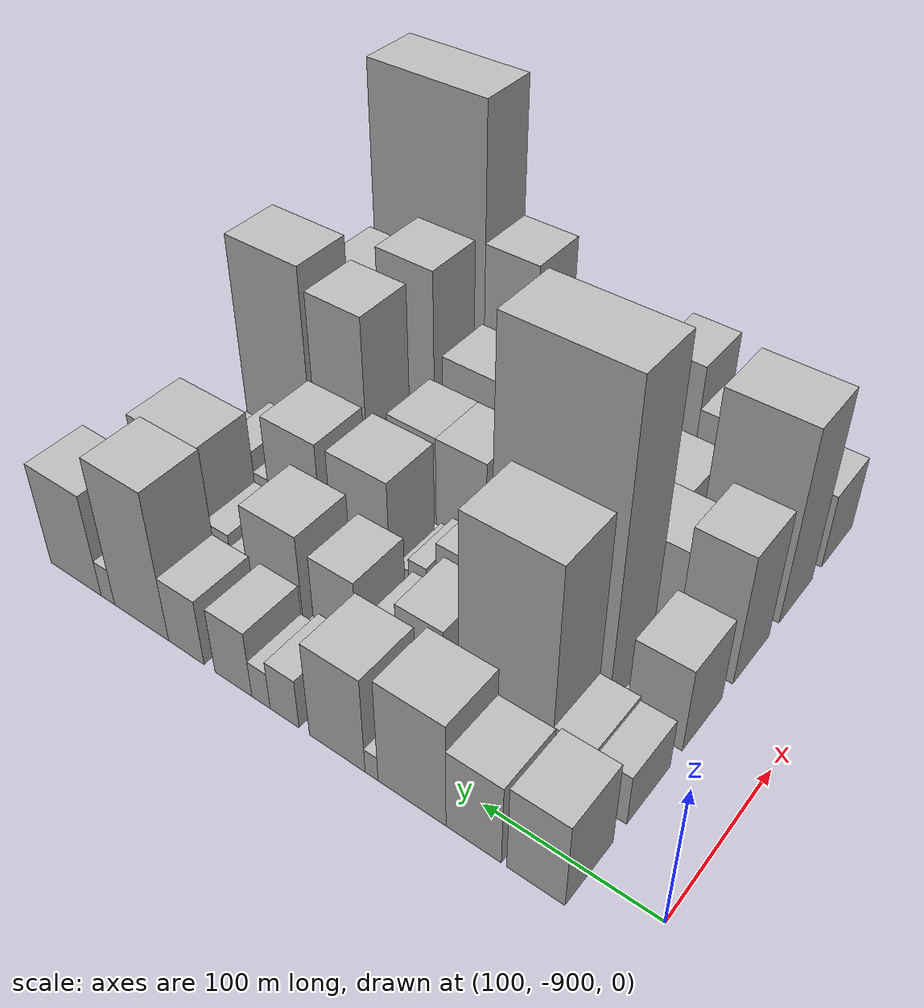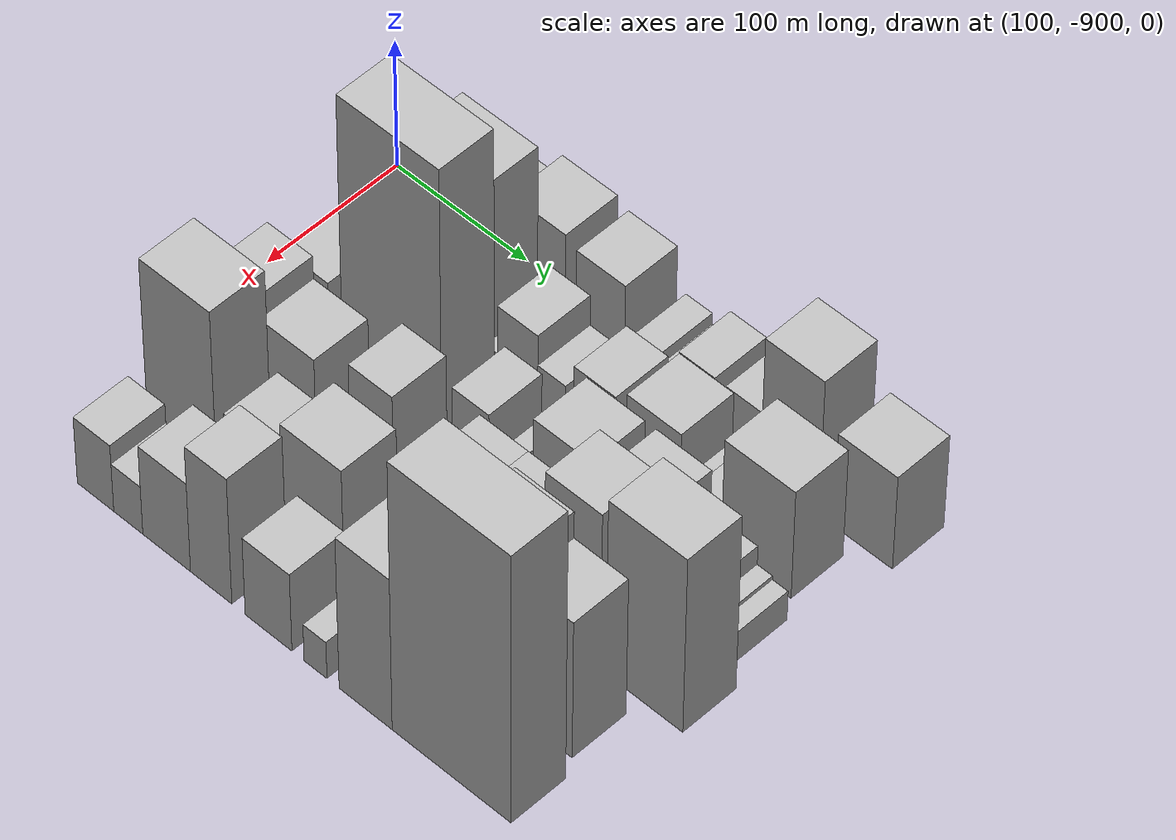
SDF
<sdf version="1.6">
 <world name="default">
  <model name="building_1">
   <static>1</static>
   <pose>100.0000 -843.9824 0 0.000000 0.000000 0.000000</pose>
   <link name="link">
    <pose>0 0 30.00 0 0 0</pose>
    <collision name="collision"><geometry><box><size>40.0000 32.0353 60.0000</size></box></geometry></collision>
    <visual name="visual">
     <cast_shadows>0</cast_shadows>
     <geometry><box><size>40.0000 32.0353 60.0000</size></box></geometry>
     <material>
      <script>
       <uri>model://HANNAS_wall/materials/scripts</uri>
       <uri>model://HANNAS_wall/materials/textures</uri>
       <name>vrc/HANNAS_wall</name>
      </script>
     </material>
    </visual>
   </link>
  </model>
  <model name="building_2">
   <static>1</static>
   <pose>100.0000 -808.9889 0 0.000000 0.000000 0.000000</pose>
   <link name="link">
    <pose>0 0 28.50 0 0 0</pose>
    <collision name="collision"><geometry><box><size>40.0000 31.9517 57.0000</size></box></geometry></collision>
    <visual name="visual">
     <cast_shadows>0</cast_shadows>
     <geometry><box><size>40.0000 31.9517 57.0000</size></box></geometry>
     <material>
      <script>
       <uri>model://HANNAS_wall/materials/scripts</uri>
       <uri>model://HANNAS_wall/materials/textures</uri>
       <name>vrc/HANNAS_wall</name>
      </script>
     </material>
    </visual>
   </link>
  </model>
  <model name="building_3">
   <static>1</static>
   <pose>100.0000 -772.3202 0 0.000000 0.000000 0.000000</pose>
   <link name="link">
    <pose>0 0 37.50 0 0 0</pose>
    <collision name="collision"><geometry><box><size>40.0000 41.3855 75.0000</size></box></geometry></collision>
    <visual name="visual">
     <cast_shadows>0</cast_shadows>
     <geometry><box><size>40.0000 41.3855 75.0000</size></box></geometry>
     <material>
      <script>
       <uri>model://HANNAS_wall/materials/scripts</uri>
       <uri>model://HANNAS_wall/materials/textures</uri>
       <name>vrc/HANNAS_wall</name>
      </script>
     </material>
    </visual>
   </link>
  </model>
  <model name="building_4">
   <static>1</static>
   <pose>100.0000 -747.5614 0 0.000000 0.000000 0.000000</pose>
   <link name="link">
    <pose>0 0 9.00 0 0 0</pose>
    <collision name="collision"><geometry><box><size>40.0000 8.1321 18.0000</size></box></geometry></collision>
    <visual name="visual">
     <cast_shadows>0</cast_shadows>
     <geometry><box><size>40.0000 8.1321 18.0000</size></box></geometry>
     <material>
      <script>
       <uri>model://HANNAS_wall/materials/scripts</uri>
       <uri>model://HANNAS_wall/materials/textures</uri>
       <name>vrc/HANNAS_wall</name>
      </script>
     </material>
    </visual>
   </link>
  </model>
  <model name="building_5">
   <static>1</static>
   <pose>100.0000 -725.3649 0 0.000000 0.000000 0.000000</pose>
   <link name="link">
    <pose>0 0 34.50 0 0 0</pose>
    <collision name="collision"><geometry><box><size>40.0000 36.2610 69.0000</size></box></geometry></collision>
    <visual name="visual">
     <cast_shadows>0</cast_shadows>
     <geometry><box><size>40.0000 36.2610 69.0000</size></box></geometry>
     <material>
      <script>
       <uri>model://HANNAS_wall/materials/scripts</uri>
       <uri>model://HANNAS_wall/materials/textures</uri>
       <name>vrc/HANNAS_wall</name>
      </script>
     </material>
    </visual>
   </link>
  </model>
  <model name="building_6">
   <static>1</static>
   <pose>100.0000 -690.3947 0 0.000000 0.000000 0.000000</pose>
   <link name="link">
    <pose>0 0 18.00 0 0 0</pose>
    <collision name="collision"><geometry><box><size>40.0000 19.6794 36.0000</size></box></geometry></collision>
    <visual name="visual">
     <cast_shadows>0</cast_shadows>
     <geometry><box><size>40.0000 19.6794 36.0000</size></box></geometry>
     <material>
      <script>
       <uri>model://HANNAS_wall/materials/scripts</uri>
       <uri>model://HANNAS_wall/materials/textures</uri>
       <name>vrc/HANNAS_wall</name>
      </script>
     </material>
    </visual>
   </link>
  </model>
  <model name="building_7">
   <static>1</static>
   <pose>100.0000 -674.1276 0 0.000000 0.000000 0.000000</pose>
   <link name="link">
    <pose>0 0 13.50 0 0 0</pose>
    <collision name="collision"><geometry><box><size>40.0000 12.8548 27.0000</size></box></geometry></collision>
    <visual name="visual">
     <cast_shadows>0</cast_shadows>
     <geometry><box><size>40.0000 12.8548 27.0000</size></box></geometry>
     <material>
      <script>
       <uri>model://HANNAS_wall/materials/scripts</uri>
       <uri>model://HANNAS_wall/materials/textures</uri>
       <name>vrc/HANNAS_wall</name>
      </script>
     </material>
    </visual>
   </link>
  </model>
  <model name="building_8">
   <static>1</static>
   <pose>100.0000 -654.4805 0 0.000000 0.000000 0.000000</pose>
   <link name="link">
    <pose>0 0 24.00 0 0 0</pose>
    <collision name="collision"><geometry><box><size>40.0000 26.4393 48.0000</size></box></geometry></collision>
    <visual name="visual">
     <cast_shadows>0</cast_shadows>
     <geometry><box><size>40.0000 26.4393 48.0000</size></box></geometry>
     <material>
      <script>
       <uri>model://HANNAS_wall/materials/scripts</uri>
       <uri>model://HANNAS_wall/materials/textures</uri>
       <name>vrc/HANNAS_wall</name>
      </script>
     </material>
    </visual>
   </link>
  </model>
  <model name="building_9">
   <static>1</static>
   <pose>100.0000 -619.9598 0 0.000000 0.000000 0.000000</pose>
   <link name="link">
    <pose>0 0 24.00 0 0 0</pose>
    <collision name="collision"><geometry><box><size>40.0000 26.6021 48.0000</size></box></geometry></collision>
    <visual name="visual">
     <cast_shadows>0</cast_shadows>
     <geometry><box><size>40.0000 26.6021 48.0000</size></box></geometry>
     <material>
      <script>
       <uri>model://HANNAS_wall/materials/scripts</uri>
       <uri>model://HANNAS_wall/materials/textures</uri>
       <name>vrc/HANNAS_wall</name>
      </script>
     </material>
    </visual>
   </link>
  </model>
  <model name="building_10">
   <static>1</static>
   <pose>100.0000 -585.4479 0 0.000000 0.000000 0.000000</pose>
   <link name="link">
    <pose>0 0 54.00 0 0 0</pose>
    <collision name="collision"><geometry><box><size>40.0000 42.4217 108.0000</size></box></geometry></collision>
    <visual name="visual">
     <cast_shadows>0</cast_shadows>
     <geometry><box><size>40.0000 42.4217 108.0000</size></box></geometry>
     <material>
      <script>
       <uri>model://HANNAS_wall/materials/scripts</uri>
       <uri>model://HANNAS_wall/materials/textures</uri>
       <name>vrc/HANNAS_wall</name>
      </script>
     </material>
    </visual>
   </link>
  </model>
  <model name="building_11">
   <static>1</static>
   <pose>100.0000 -558.7924 0 0.000000 0.000000 0.000000</pose>
   <link name="link">
    <pose>0 0 13.50 0 0 0</pose>
    <collision name="collision"><geometry><box><size>40.0000 10.8893 27.0000</size></box></geometry></collision>
    <visual name="visual">
     <cast_shadows>0</cast_shadows>
     <geometry><box><size>40.0000 10.8893 27.0000</size></box></geometry>
     <material>
      <script>
       <uri>model://HANNAS_wall/materials/scripts</uri>
       <uri>model://HANNAS_wall/materials/textures</uri>
       <name>vrc/HANNAS_wall</name>
      </script>
     </material>
    </visual>
   </link>
  </model>
  <model name="building_12">
   <static>1</static>
   <pose>100.0000 -532.3244 0 0.000000 0.000000 0.000000</pose>
   <link name="link">
    <pose>0 0 37.50 0 0 0</pose>
    <collision name="collision"><geometry><box><size>40.0000 42.0468 75.0000</size></box></geometry></collision>
    <visual name="visual">
     <cast_shadows>0</cast_shadows>
     <geometry><box><size>40.0000 42.0468 75.0000</size></box></geometry>
     <material>
      <script>
       <uri>model://HANNAS_wall/materials/scripts</uri>
       <uri>model://HANNAS_wall/materials/textures</uri>
       <name>vrc/HANNAS_wall</name>
      </script>
     </material>
    </visual>
   </link>
  </model>
  <model name="building_54">
   <static>1</static>
   <pose>152.0000 -849.9391 0 0.000000 0.000000 0.000000</pose>
   <link name="link">
    <pose>0 0 18.00 0 0 0</pose>
    <collision name="collision"><geometry><box><size>40.0000 20.1219 36.0000</size></box></geometry></collision>
    <visual name="visual">
     <cast_shadows>0</cast_shadows>
     <geometry><box><size>40.0000 20.1219 36.0000</size></box></geometry>
     <material>
      <script>
       <uri>model://HANNAS_wall/materials/scripts</uri>
       <uri>model://HANNAS_wall/materials/textures</uri>
       <name>vrc/HANNAS_wall</name>
      </script>
     </material>
    </visual>
   </link>
  </model>
  <model name="building_55">
   <static>1</static>
   <pose>152.0000 -828.3046 0 0.000000 0.000000 0.000000</pose>
   <link name="link">
    <pose>0 0 19.50 0 0 0</pose>
    <collision name="collision"><geometry><box><size>40.0000 23.1471 39.0000</size></box></geometry></collision>
    <visual name="visual">
     <cast_shadows>0</cast_shadows>
     <geometry><box><size>40.0000 23.1471 39.0000</size></box></geometry>
     <material>
      <script>
       <uri>model://HANNAS_wall/materials/scripts</uri>
       <uri>model://HANNAS_wall/materials/textures</uri>
       <name>vrc/HANNAS_wall</name>
      </script>
     </material>
    </visual>
   </link>
  </model>
  <model name="building_56">
   <static>1</static>
   <pose>152.0000 -788.7772 0 0.000000 0.000000 0.000000</pose>
   <link name="link">
    <pose>0 0 73.50 0 0 0</pose>
    <collision name="collision"><geometry><box><size>40.0000 55.9077 147.0000</size></box></geometry></collision>
    <visual name="visual">
     <cast_shadows>0</cast_shadows>
     <geometry><box><size>40.0000 55.9077 147.0000</size></box></geometry>
     <material>
      <script>
       <uri>model://HANNAS_wall/materials/scripts</uri>
       <uri>model://HANNAS_wall/materials/textures</uri>
       <name>vrc/HANNAS_wall</name>
      </script>
     </material>
    </visual>
   </link>
  </model>
  <model name="building_57">
   <static>1</static>
   <pose>152.0000 -756.2359 0 0.000000 0.000000 0.000000</pose>
   <link name="link">
    <pose>0 0 10.50 0 0 0</pose>
    <collision name="collision"><geometry><box><size>40.0000 9.1748 21.0000</size></box></geometry></collision>
    <visual name="visual">
     <cast_shadows>0</cast_shadows>
     <geometry><box><size>40.0000 9.1748 21.0000</size></box></geometry>
     <material>
      <script>
       <uri>model://HANNAS_wall/materials/scripts</uri>
       <uri>model://HANNAS_wall/materials/textures</uri>
       <name>vrc/HANNAS_wall</name>
      </script>
     </material>
    </visual>
   </link>
  </model>
  <model name="building_58">
   <static>1</static>
   <pose>152.0000 -736.5717 0 0.000000 0.000000 0.000000</pose>
   <link name="link">
    <pose>0 0 30.00 0 0 0</pose>
    <collision name="collision"><geometry><box><size>40.0000 30.1537 60.0000</size></box></geometry></collision>
    <visual name="visual">
     <cast_shadows>0</cast_shadows>
     <geometry><box><size>40.0000 30.1537 60.0000</size></box></geometry>
     <material>
      <script>
       <uri>model://HANNAS_wall/materials/scripts</uri>
       <uri>model://HANNAS_wall/materials/textures</uri>
       <name>vrc/HANNAS_wall</name>
      </script>
     </material>
    </visual>
   </link>
  </model>
  <model name="building_59">
   <static>1</static>
   <pose>152.0000 -711.0930 0 0.000000 0.000000 0.000000</pose>
   <link name="link">
    <pose>0 0 18.00 0 0 0</pose>
    <collision name="collision"><geometry><box><size>40.0000 20.8037 36.0000</size></box></geometry></collision>
    <visual name="visual">
     <cast_shadows>0</cast_shadows>
     <geometry><box><size>40.0000 20.8037 36.0000</size></box></geometry>
     <material>
      <script>
       <uri>model://HANNAS_wall/materials/scripts</uri>
       <uri>model://HANNAS_wall/materials/textures</uri>
       <name>vrc/HANNAS_wall</name>
      </script>
     </material>
    </visual>
   </link>
  </model>
  <model name="building_60">
   <static>1</static>
   <pose>152.0000 -679.4132 0 0.000000 0.000000 0.000000</pose>
   <link name="link">
    <pose>0 0 28.50 0 0 0</pose>
    <collision name="collision"><geometry><box><size>40.0000 30.5560 57.0000</size></box></geometry></collision>
    <visual name="visual">
     <cast_shadows>0</cast_shadows>
     <geometry><box><size>40.0000 30.5560 57.0000</size></box></geometry>
     <material>
      <script>
       <uri>model://HANNAS_wall/materials/scripts</uri>
       <uri>model://HANNAS_wall/materials/textures</uri>
       <name>vrc/HANNAS_wall</name>
      </script>
     </material>
    </visual>
   </link>
  </model>
  <model name="building_61">
   <static>1</static>
   <pose>152.0000 -636.3785 0 0.000000 0.000000 0.000000</pose>
   <link name="link">
    <pose>0 0 33.00 0 0 0</pose>
    <collision name="collision"><geometry><box><size>40.0000 39.5135 66.0000</size></box></geometry></collision>
    <visual name="visual">
     <cast_shadows>0</cast_shadows>
     <geometry><box><size>40.0000 39.5135 66.0000</size></box></geometry>
     <material>
      <script>
       <uri>model://HANNAS_wall/materials/scripts</uri>
       <uri>model://HANNAS_wall/materials/textures</uri>
       <name>vrc/HANNAS_wall</name>
      </script>
     </material>
    </visual>
   </link>
  </model>
  <model name="building_62">
   <static>1</static>
   <pose>152.0000 -610.4606 0 0.000000 0.000000 0.000000</pose>
   <link name="link">
    <pose>0 0 13.50 0 0 0</pose>
    <collision name="collision"><geometry><box><size>40.0000 12.3221 27.0000</size></box></geometry></collision>
    <visual name="visual">
     <cast_shadows>0</cast_shadows>
     <geometry><box><size>40.0000 12.3221 27.0000</size></box></geometry>
     <material>
      <script>
       <uri>model://HANNAS_wall/materials/scripts</uri>
       <uri>model://HANNAS_wall/materials/textures</uri>
       <name>vrc/HANNAS_wall</name>
      </script>
     </material>
    </visual>
   </link>
  </model>
  <model name="building_63">
   <static>1</static>
   <pose>152.0000 -595.1920 0 0.000000 0.000000 0.000000</pose>
   <link name="link">
    <pose>0 0 18.00 0 0 0</pose>
    <collision name="collision"><geometry><box><size>40.0000 18.2151 36.0000</size></box></geometry></collision>
    <visual name="visual">
     <cast_shadows>0</cast_shadows>
     <geometry><box><size>40.0000 18.2151 36.0000</size></box></geometry>
     <material>
      <script>
       <uri>model://HANNAS_wall/materials/scripts</uri>
       <uri>model://HANNAS_wall/materials/textures</uri>
       <name>vrc/HANNAS_wall</name>
      </script>
     </material>
    </visual>
   </link>
  </model>
  <model name="building_64">
   <static>1</static>
   <pose>152.0000 -560.8856 0 0.000000 0.000000 0.000000</pose>
   <link name="link">
    <pose>0 0 43.50 0 0 0</pose>
    <collision name="collision"><geometry><box><size>40.0000 50.3978 87.0000</size></box></geometry></collision>
    <visual name="visual">
     <cast_shadows>0</cast_shadows>
     <geometry><box><size>40.0000 50.3978 87.0000</size></box></geometry>
     <material>
      <script>
       <uri>model://HANNAS_wall/materials/scripts</uri>
       <uri>model://HANNAS_wall/materials/textures</uri>
       <name>vrc/HANNAS_wall</name>
      </script>
     </material>
    </visual>
   </link>
  </model>
  <model name="building_103">
   <static>1</static>
   <pose>204.0000 -843.6166 0 0.000000 0.000000 0.000000</pose>
   <link name="link">
    <pose>0 0 30.00 0 0 0</pose>
    <collision name="collision"><geometry><box><size>40.0000 32.7667 60.0000</size></box></geometry></collision>
    <visual name="visual">
     <cast_shadows>0</cast_shadows>
     <geometry><box><size>40.0000 32.7667 60.0000</size></box></geometry>
     <material>
      <script>
       <uri>model://HANNAS_wall/materials/scripts</uri>
       <uri>model://HANNAS_wall/materials/textures</uri>
       <name>vrc/HANNAS_wall</name>
      </script>
     </material>
    </visual>
   </link>
  </model>
  <model name="building_104">
   <static>1</static>
   <pose>204.0000 -779.7039 0 0.000000 0.000000 0.000000</pose>
   <link name="link">
    <pose>0 0 108.00 0 0 0</pose>
    <collision name="collision"><geometry><box><size>40.0000 75.0588 216.0000</size></box></geometry></collision>
    <visual name="visual">
     <cast_shadows>0</cast_shadows>
     <geometry><box><size>40.0000 75.0588 216.0000</size></box></geometry>
     <material>
      <script>
       <uri>model://HANNAS_wall/materials/scripts</uri>
       <uri>model://HANNAS_wall/materials/textures</uri>
       <name>vrc/HANNAS_wall</name>
      </script>
     </material>
    </visual>
   </link>
  </model>
  <model name="building_105">
   <static>1</static>
   <pose>204.0000 -720.4443 0 0.000000 0.000000 0.000000</pose>
   <link name="link">
    <pose>0 0 25.50 0 0 0</pose>
    <collision name="collision"><geometry><box><size>40.0000 27.4602 51.0000</size></box></geometry></collision>
    <visual name="visual">
     <cast_shadows>0</cast_shadows>
     <geometry><box><size>40.0000 27.4602 51.0000</size></box></geometry>
     <material>
      <script>
       <uri>model://HANNAS_wall/materials/scripts</uri>
       <uri>model://HANNAS_wall/materials/textures</uri>
       <name>vrc/HANNAS_wall</name>
      </script>
     </material>
    </visual>
   </link>
  </model>
  <model name="building_106">
   <static>1</static>
   <pose>204.0000 -693.5294 0 0.000000 0.000000 0.000000</pose>
   <link name="link">
    <pose>0 0 13.50 0 0 0</pose>
    <collision name="collision"><geometry><box><size>40.0000 12.3696 27.0000</size></box></geometry></collision>
    <visual name="visual">
     <cast_shadows>0</cast_shadows>
     <geometry><box><size>40.0000 12.3696 27.0000</size></box></geometry>
     <material>
      <script>
       <uri>model://HANNAS_wall/materials/scripts</uri>
       <uri>model://HANNAS_wall/materials/textures</uri>
       <name>vrc/HANNAS_wall</name>
      </script>
     </material>
    </visual>
   </link>
  </model>
  <model name="building_107">
   <static>1</static>
   <pose>204.0000 -683.2090 0 0.000000 0.000000 0.000000</pose>
   <link name="link">
    <pose>0 0 9.00 0 0 0</pose>
    <collision name="collision"><geometry><box><size>40.0000 8.2712 18.0000</size></box></geometry></collision>
    <visual name="visual">
     <cast_shadows>0</cast_shadows>
     <geometry><box><size>40.0000 8.2712 18.0000</size></box></geometry>
     <material>
      <script>
       <uri>model://HANNAS_wall/materials/scripts</uri>
       <uri>model://HANNAS_wall/materials/textures</uri>
       <name>vrc/HANNAS_wall</name>
      </script>
     </material>
    </visual>
   </link>
  </model>
  <model name="building_108">
   <static>1</static>
   <pose>204.0000 -652.8437 0 0.000000 0.000000 0.000000</pose>
   <link name="link">
    <pose>0 0 37.50 0 0 0</pose>
    <collision name="collision"><geometry><box><size>40.0000 42.4595 75.0000</size></box></geometry></collision>
    <visual name="visual">
     <cast_shadows>0</cast_shadows>
     <geometry><box><size>40.0000 42.4595 75.0000</size></box></geometry>
     <material>
      <script>
       <uri>model://HANNAS_wall/materials/scripts</uri>
       <uri>model://HANNAS_wall/materials/textures</uri>
       <name>vrc/HANNAS_wall</name>
      </script>
     </material>
    </visual>
   </link>
  </model>
  <model name="building_109">
   <static>1</static>
   <pose>204.0000 -603.5670 0 0.000000 0.000000 0.000000</pose>
   <link name="link">
    <pose>0 0 37.50 0 0 0</pose>
    <collision name="collision"><geometry><box><size>40.0000 40.0938 75.0000</size></box></geometry></collision>
    <visual name="visual">
     <cast_shadows>0</cast_shadows>
     <geometry><box><size>40.0000 40.0938 75.0000</size></box></geometry>
     <material>
      <script>
       <uri>model://HANNAS_wall/materials/scripts</uri>
       <uri>model://HANNAS_wall/materials/textures</uri>
       <name>vrc/HANNAS_wall</name>
      </script>
     </material>
    </visual>
   </link>
  </model>
  <model name="building_110">
   <static>1</static>
   <pose>204.0000 -577.8562 0 0.000000 0.000000 0.000000</pose>
   <link name="link">
    <pose>0 0 13.50 0 0 0</pose>
    <collision name="collision"><geometry><box><size>40.0000 11.3280 27.0000</size></box></geometry></collision>
    <visual name="visual">
     <cast_shadows>0</cast_shadows>
     <geometry><box><size>40.0000 11.3280 27.0000</size></box></geometry>
     <material>
      <script>
       <uri>model://HANNAS_wall/materials/scripts</uri>
       <uri>model://HANNAS_wall/materials/textures</uri>
       <name>vrc/HANNAS_wall</name>
      </script>
     </material>
    </visual>
   </link>
  </model>
  <model name="building_111">
   <static>1</static>
   <pose>204.0000 -560.8954 0 0.000000 0.000000 0.000000</pose>
   <link name="link">
    <pose>0 0 21.00 0 0 0</pose>
    <collision name="collision"><geometry><box><size>40.0000 22.5935 42.0000</size></box></geometry></collision>
    <visual name="visual">
     <cast_shadows>0</cast_shadows>
     <geometry><box><size>40.0000 22.5935 42.0000</size></box></geometry>
     <material>
      <script>
       <uri>model://HANNAS_wall/materials/scripts</uri>
       <uri>model://HANNAS_wall/materials/textures</uri>
       <name>vrc/HANNAS_wall</name>
      </script>
     </material>
    </visual>
   </link>
  </model>
  <model name="building_112">
   <static>1</static>
   <pose>204.0000 -544.0743 0 0.000000 0.000000 0.000000</pose>
   <link name="link">
    <pose>0 0 13.50 0 0 0</pose>
    <collision name="collision"><geometry><box><size>40.0000 11.0487 27.0000</size></box></geometry></collision>
    <visual name="visual">
     <cast_shadows>0</cast_shadows>
     <geometry><box><size>40.0000 11.0487 27.0000</size></box></geometry>
     <material>
      <script>
       <uri>model://HANNAS_wall/materials/scripts</uri>
       <uri>model://HANNAS_wall/materials/textures</uri>
       <name>vrc/HANNAS_wall</name>
      </script>
     </material>
    </visual>
   </link>
  </model>
  <model name="building_113">
   <static>1</static>
   <pose>204.0000 -532.9611 0 0.000000 0.000000 0.000000</pose>
   <link name="link">
    <pose>0 0 12.00 0 0 0</pose>
    <collision name="collision"><geometry><box><size>40.0000 11.1776 24.0000</size></box></geometry></collision>
    <visual name="visual">
     <cast_shadows>0</cast_shadows>
     <geometry><box><size>40.0000 11.1776 24.0000</size></box></geometry>
     <material>
      <script>
       <uri>model://HANNAS_wall/materials/scripts</uri>
       <uri>model://HANNAS_wall/materials/textures</uri>
       <name>vrc/HANNAS_wall</name>
      </script>
     </material>
    </visual>
   </link>
  </model>
  <model name="building_153">
   <static>1</static>
   <pose>256.0000 -842.7660 0 0.000000 0.000000 0.000000</pose>
   <link name="link">
    <pose>0 0 46.50 0 0 0</pose>
    <collision name="collision"><geometry><box><size>40.0000 34.4679 93.0000</size></box></geometry></collision>
    <visual name="visual">
     <cast_shadows>0</cast_shadows>
     <geometry><box><size>40.0000 34.4679 93.0000</size></box></geometry>
     <material>
      <script>
       <uri>model://HANNAS_wall/materials/scripts</uri>
       <uri>model://HANNAS_wall/materials/textures</uri>
       <name>vrc/HANNAS_wall</name>
      </script>
     </material>
    </visual>
   </link>
  </model>
  <model name="building_154">
   <static>1</static>
   <pose>256.0000 -805.0667 0 0.000000 0.000000 0.000000</pose>
   <link name="link">
    <pose>0 0 37.50 0 0 0</pose>
    <collision name="collision"><geometry><box><size>40.0000 40.9307 75.0000</size></box></geometry></collision>
    <visual name="visual">
     <cast_shadows>0</cast_shadows>
     <geometry><box><size>40.0000 40.9307 75.0000</size></box></geometry>
     <material>
      <script>
       <uri>model://HANNAS_wall/materials/scripts</uri>
       <uri>model://HANNAS_wall/materials/textures</uri>
       <name>vrc/HANNAS_wall</name>
      </script>
     </material>
    </visual>
   </link>
  </model>
  <model name="building_155">
   <static>1</static>
   <pose>256.0000 -767.0766 0 0.000000 0.000000 0.000000</pose>
   <link name="link">
    <pose>0 0 16.50 0 0 0</pose>
    <collision name="collision"><geometry><box><size>40.0000 17.0497 33.0000</size></box></geometry></collision>
    <visual name="visual">
     <cast_shadows>0</cast_shadows>
     <geometry><box><size>40.0000 17.0497 33.0000</size></box></geometry>
     <material>
      <script>
       <uri>model://HANNAS_wall/materials/scripts</uri>
       <uri>model://HANNAS_wall/materials/textures</uri>
       <name>vrc/HANNAS_wall</name>
      </script>
     </material>
    </visual>
   </link>
  </model>
  <model name="building_156">
   <static>1</static>
   <pose>256.0000 -742.3541 0 0.000000 0.000000 0.000000</pose>
   <link name="link">
    <pose>0 0 46.50 0 0 0</pose>
    <collision name="collision"><geometry><box><size>40.0000 32.3952 93.0000</size></box></geometry></collision>
    <visual name="visual">
     <cast_shadows>0</cast_shadows>
     <geometry><box><size>40.0000 32.3952 93.0000</size></box></geometry>
     <material>
      <script>
       <uri>model://HANNAS_wall/materials/scripts</uri>
       <uri>model://HANNAS_wall/materials/textures</uri>
       <name>vrc/HANNAS_wall</name>
      </script>
     </material>
    </visual>
   </link>
  </model>
  <model name="building_157">
   <static>1</static>
   <pose>256.0000 -716.3275 0 0.000000 0.000000 0.000000</pose>
   <link name="link">
    <pose>0 0 18.00 0 0 0</pose>
    <collision name="collision"><geometry><box><size>40.0000 19.6581 36.0000</size></box></geometry></collision>
    <visual name="visual">
     <cast_shadows>0</cast_shadows>
     <geometry><box><size>40.0000 19.6581 36.0000</size></box></geometry>
     <material>
      <script>
       <uri>model://HANNAS_wall/materials/scripts</uri>
       <uri>model://HANNAS_wall/materials/textures</uri>
       <name>vrc/HANNAS_wall</name>
      </script>
     </material>
    </visual>
   </link>
  </model>
  <model name="building_158">
   <static>1</static>
   <pose>256.0000 -683.7105 0 0.000000 0.000000 0.000000</pose>
   <link name="link">
    <pose>0 0 33.00 0 0 0</pose>
    <collision name="collision"><geometry><box><size>40.0000 35.5761 66.0000</size></box></geometry></collision>
    <visual name="visual">
     <cast_shadows>0</cast_shadows>
     <geometry><box><size>40.0000 35.5761 66.0000</size></box></geometry>
     <material>
      <script>
       <uri>model://HANNAS_wall/materials/scripts</uri>
       <uri>model://HANNAS_wall/materials/textures</uri>
       <name>vrc/HANNAS_wall</name>
      </script>
     </material>
    </visual>
   </link>
  </model>
  <model name="building_159">
   <static>1</static>
   <pose>256.0000 -648.4100 0 0.000000 0.000000 0.000000</pose>
   <link name="link">
    <pose>0 0 33.00 0 0 0</pose>
    <collision name="collision"><geometry><box><size>40.0000 35.0248 66.0000</size></box></geometry></collision>
    <visual name="visual">
     <cast_shadows>0</cast_shadows>
     <geometry><box><size>40.0000 35.0248 66.0000</size></box></geometry>
     <material>
      <script>
       <uri>model://HANNAS_wall/materials/scripts</uri>
       <uri>model://HANNAS_wall/materials/textures</uri>
       <name>vrc/HANNAS_wall</name>
      </script>
     </material>
    </visual>
   </link>
  </model>
  <model name="building_160">
   <static>1</static>
   <pose>256.0000 -627.2133 0 0.000000 0.000000 0.000000</pose>
   <link name="link">
    <pose>0 0 9.00 0 0 0</pose>
    <collision name="collision"><geometry><box><size>40.0000 7.3686 18.0000</size></box></geometry></collision>
    <visual name="visual">
     <cast_shadows>0</cast_shadows>
     <geometry><box><size>40.0000 7.3686 18.0000</size></box></geometry>
     <material>
      <script>
       <uri>model://HANNAS_wall/materials/scripts</uri>
       <uri>model://HANNAS_wall/materials/textures</uri>
       <name>vrc/HANNAS_wall</name>
      </script>
     </material>
    </visual>
   </link>
  </model>
  <model name="building_161">
   <static>1</static>
   <pose>256.0000 -619.1703 0 0.000000 0.000000 0.000000</pose>
   <link name="link">
    <pose>0 0 9.00 0 0 0</pose>
    <collision name="collision"><geometry><box><size>40.0000 8.7174 18.0000</size></box></geometry></collision>
    <visual name="visual">
     <cast_shadows>0</cast_shadows>
     <geometry><box><size>40.0000 8.7174 18.0000</size></box></geometry>
     <material>
      <script>
       <uri>model://HANNAS_wall/materials/scripts</uri>
       <uri>model://HANNAS_wall/materials/textures</uri>
       <name>vrc/HANNAS_wall</name>
      </script>
     </material>
    </visual>
   </link>
  </model>
  <model name="building_162">
   <static>1</static>
   <pose>256.0000 -594.5010 0 0.000000 0.000000 0.000000</pose>
   <link name="link">
    <pose>0 0 63.00 0 0 0</pose>
    <collision name="collision"><geometry><box><size>40.0000 40.6212 126.0000</size></box></geometry></collision>
    <visual name="visual">
     <cast_shadows>0</cast_shadows>
     <geometry><box><size>40.0000 40.6212 126.0000</size></box></geometry>
     <material>
      <script>
       <uri>model://HANNAS_wall/materials/scripts</uri>
       <uri>model://HANNAS_wall/materials/textures</uri>
       <name>vrc/HANNAS_wall</name>
      </script>
     </material>
    </visual>
   </link>
  </model>
  <model name="building_163">
   <static>1</static>
   <pose>256.0000 -542.5520 0 0.000000 0.000000 0.000000</pose>
   <link name="link">
    <pose>0 0 70.50 0 0 0</pose>
    <collision name="collision"><geometry><box><size>40.0000 55.2768 141.0000</size></box></geometry></collision>
    <visual name="visual">
     <cast_shadows>0</cast_shadows>
     <geometry><box><size>40.0000 55.2768 141.0000</size></box></geometry>
     <material>
      <script>
       <uri>model://HANNAS_wall/materials/scripts</uri>
       <uri>model://HANNAS_wall/materials/textures</uri>
       <name>vrc/HANNAS_wall</name>
      </script>
     </material>
    </visual>
   </link>
  </model>
  <model name="building_207">
   <static>1</static>
   <pose>308.0000 -833.4992 0 0.000000 0.000000 0.000000</pose>
   <link name="link">
    <pose>0 0 69.00 0 0 0</pose>
    <collision name="collision"><geometry><box><size>40.0000 53.0015 138.0000</size></box></geometry></collision>
    <visual name="visual">
     <cast_shadows>0</cast_shadows>
     <geometry><box><size>40.0000 53.0015 138.0000</size></box></geometry>
     <material>
      <script>
       <uri>model://HANNAS_wall/materials/scripts</uri>
       <uri>model://HANNAS_wall/materials/textures</uri>
       <name>vrc/HANNAS_wall</name>
      </script>
     </material>
    </visual>
   </link>
  </model>
  <model name="building_208">
   <static>1</static>
   <pose>308.0000 -803.3696 0 0.000000 0.000000 0.000000</pose>
   <link name="link">
    <pose>0 0 7.50 0 0 0</pose>
    <collision name="collision"><geometry><box><size>40.0000 7.2577 15.0000</size></box></geometry></collision>
    <visual name="visual">
     <cast_shadows>0</cast_shadows>
     <geometry><box><size>40.0000 7.2577 15.0000</size></box></geometry>
     <material>
      <script>
       <uri>model://HANNAS_wall/materials/scripts</uri>
       <uri>model://HANNAS_wall/materials/textures</uri>
       <name>vrc/HANNAS_wall</name>
      </script>
     </material>
    </visual>
   </link>
  </model>
  <model name="building_209">
   <static>1</static>
   <pose>308.0000 -781.7451 0 0.000000 0.000000 0.000000</pose>
   <link name="link">
    <pose>0 0 31.50 0 0 0</pose>
    <collision name="collision"><geometry><box><size>40.0000 35.9913 63.0000</size></box></geometry></collision>
    <visual name="visual">
     <cast_shadows>0</cast_shadows>
     <geometry><box><size>40.0000 35.9913 63.0000</size></box></geometry>
     <material>
      <script>
       <uri>model://HANNAS_wall/materials/scripts</uri>
       <uri>model://HANNAS_wall/materials/textures</uri>
       <name>vrc/HANNAS_wall</name>
      </script>
     </material>
    </visual>
   </link>
  </model>
  <model name="building_210">
   <static>1</static>
   <pose>308.0000 -733.9635 0 0.000000 0.000000 0.000000</pose>
   <link name="link">
    <pose>0 0 45.00 0 0 0</pose>
    <collision name="collision"><geometry><box><size>40.0000 45.5719 90.0000</size></box></geometry></collision>
    <visual name="visual">
     <cast_shadows>0</cast_shadows>
     <geometry><box><size>40.0000 45.5719 90.0000</size></box></geometry>
     <material>
      <script>
       <uri>model://HANNAS_wall/materials/scripts</uri>
       <uri>model://HANNAS_wall/materials/textures</uri>
       <name>vrc/HANNAS_wall</name>
      </script>
     </material>
    </visual>
   </link>
  </model>
  <model name="building_211">
   <static>1</static>
   <pose>308.0000 -688.2984 0 0.000000 0.000000 0.000000</pose>
   <link name="link">
    <pose>0 0 27.00 0 0 0</pose>
    <collision name="collision"><geometry><box><size>40.0000 29.7584 54.0000</size></box></geometry></collision>
    <visual name="visual">
     <cast_shadows>0</cast_shadows>
     <geometry><box><size>40.0000 29.7584 54.0000</size></box></geometry>
     <material>
      <script>
       <uri>model://HANNAS_wall/materials/scripts</uri>
       <uri>model://HANNAS_wall/materials/textures</uri>
       <name>vrc/HANNAS_wall</name>
      </script>
     </material>
    </visual>
   </link>
  </model>
  <model name="building_212">
   <static>1</static>
   <pose>308.0000 -649.9580 0 0.000000 0.000000 0.000000</pose>
   <link name="link">
    <pose>0 0 37.50 0 0 0</pose>
    <collision name="collision"><geometry><box><size>40.0000 38.9223 75.0000</size></box></geometry></collision>
    <visual name="visual">
     <cast_shadows>0</cast_shadows>
     <geometry><box><size>40.0000 38.9223 75.0000</size></box></geometry>
     <material>
      <script>
       <uri>model://HANNAS_wall/materials/scripts</uri>
       <uri>model://HANNAS_wall/materials/textures</uri>
       <name>vrc/HANNAS_wall</name>
      </script>
     </material>
    </visual>
   </link>
  </model>
  <model name="building_213">
   <static>1</static>
   <pose>308.0000 -603.5496 0 0.000000 0.000000 0.000000</pose>
   <link name="link">
    <pose>0 0 66.00 0 0 0</pose>
    <collision name="collision"><geometry><box><size>40.0000 41.8945 132.0000</size></box></geometry></collision>
    <visual name="visual">
     <cast_shadows>0</cast_shadows>
     <geometry><box><size>40.0000 41.8945 132.0000</size></box></geometry>
     <material>
      <script>
       <uri>model://HANNAS_wall/materials/scripts</uri>
       <uri>model://HANNAS_wall/materials/textures</uri>
       <name>vrc/HANNAS_wall</name>
      </script>
     </material>
    </visual>
   </link>
  </model>
  <model name="building_214">
   <static>1</static>
   <pose>308.0000 -563.3330 0 0.000000 0.000000 0.000000</pose>
   <link name="link">
    <pose>0 0 55.50 0 0 0</pose>
    <collision name="collision"><geometry><box><size>40.0000 38.5387 111.0000</size></box></geometry></collision>
    <visual name="visual">
     <cast_shadows>0</cast_shadows>
     <geometry><box><size>40.0000 38.5387 111.0000</size></box></geometry>
     <material>
      <script>
       <uri>model://HANNAS_wall/materials/scripts</uri>
       <uri>model://HANNAS_wall/materials/textures</uri>
       <name>vrc/HANNAS_wall</name>
      </script>
     </material>
    </visual>
   </link>
  </model>
  <model name="building_254">
   <static>1</static>
   <pose>360.0000 -845.9875 0 0.000000 0.000000 0.000000</pose>
   <link name="link">
    <pose>0 0 27.00 0 0 0</pose>
    <collision name="collision"><geometry><box><size>40.0000 28.0249 54.0000</size></box></geometry></collision>
    <visual name="visual">
     <cast_shadows>0</cast_shadows>
     <geometry><box><size>40.0000 28.0249 54.0000</size></box></geometry>
     <material>
      <script>
       <uri>model://HANNAS_wall/materials/scripts</uri>
       <uri>model://HANNAS_wall/materials/textures</uri>
       <name>vrc/HANNAS_wall</name>
      </script>
     </material>
    </visual>
   </link>
  </model>
  <model name="building_255">
   <static>1</static>
   <pose>360.0000 -820.8342 0 0.000000 0.000000 0.000000</pose>
   <link name="link">
    <pose>0 0 19.50 0 0 0</pose>
    <collision name="collision"><geometry><box><size>40.0000 22.2818 39.0000</size></box></geometry></collision>
    <visual name="visual">
     <cast_shadows>0</cast_shadows>
     <geometry><box><size>40.0000 22.2818 39.0000</size></box></geometry>
     <material>
      <script>
       <uri>model://HANNAS_wall/materials/scripts</uri>
       <uri>model://HANNAS_wall/materials/textures</uri>
       <name>vrc/HANNAS_wall</name>
      </script>
     </material>
    </visual>
   </link>
  </model>
  <model name="building_256">
   <static>1</static>
   <pose>360.0000 -791.5456 0 0.000000 0.000000 0.000000</pose>
   <link name="link">
    <pose>0 0 36.00 0 0 0</pose>
    <collision name="collision"><geometry><box><size>40.0000 36.2952 72.0000</size></box></geometry></collision>
    <visual name="visual">
     <cast_shadows>0</cast_shadows>
     <geometry><box><size>40.0000 36.2952 72.0000</size></box></geometry>
     <material>
      <script>
       <uri>model://HANNAS_wall/materials/scripts</uri>
       <uri>model://HANNAS_wall/materials/textures</uri>
       <name>vrc/HANNAS_wall</name>
      </script>
     </material>
    </visual>
   </link>
  </model>
  <model name="building_257">
   <static>1</static>
   <pose>360.0000 -757.7947 0 0.000000 0.000000 0.000000</pose>
   <link name="link">
    <pose>0 0 51.00 0 0 0</pose>
    <collision name="collision"><geometry><box><size>40.0000 31.2067 102.0000</size></box></geometry></collision>
    <visual name="visual">
     <cast_shadows>0</cast_shadows>
     <geometry><box><size>40.0000 31.2067 102.0000</size></box></geometry>
     <material>
      <script>
       <uri>model://HANNAS_wall/materials/scripts</uri>
       <uri>model://HANNAS_wall/materials/textures</uri>
       <name>vrc/HANNAS_wall</name>
      </script>
     </material>
    </visual>
   </link>
  </model>
  <model name="building_258">
   <static>1</static>
   <pose>360.0000 -714.7000 0 0.000000 0.000000 0.000000</pose>
   <link name="link">
    <pose>0 0 31.50 0 0 0</pose>
    <collision name="collision"><geometry><box><size>40.0000 34.9828 63.0000</size></box></geometry></collision>
    <visual name="visual">
     <cast_shadows>0</cast_shadows>
     <geometry><box><size>40.0000 34.9828 63.0000</size></box></geometry>
     <material>
      <script>
       <uri>model://HANNAS_wall/materials/scripts</uri>
       <uri>model://HANNAS_wall/materials/textures</uri>
       <name>vrc/HANNAS_wall</name>
      </script>
     </material>
    </visual>
   </link>
  </model>
  <model name="building_259">
   <static>1</static>
   <pose>360.0000 -679.7176 0 0.000000 0.000000 0.000000</pose>
   <link name="link">
    <pose>0 0 15.00 0 0 0</pose>
    <collision name="collision"><geometry><box><size>40.0000 16.9819 30.0000</size></box></geometry></collision>
    <visual name="visual">
     <cast_shadows>0</cast_shadows>
     <geometry><box><size>40.0000 16.9819 30.0000</size></box></geometry>
     <material>
      <script>
       <uri>model://HANNAS_wall/materials/scripts</uri>
       <uri>model://HANNAS_wall/materials/textures</uri>
       <name>vrc/HANNAS_wall</name>
      </script>
     </material>
    </visual>
   </link>
  </model>
  <model name="building_260">
   <static>1</static>
   <pose>360.0000 -642.7422 0 0.000000 0.000000 0.000000</pose>
   <link name="link">
    <pose>0 0 61.50 0 0 0</pose>
    <collision name="collision"><geometry><box><size>40.0000 38.9688 123.0000</size></box></geometry></collision>
    <visual name="visual">
     <cast_shadows>0</cast_shadows>
     <geometry><box><size>40.0000 38.9688 123.0000</size></box></geometry>
     <material>
      <script>
       <uri>model://HANNAS_wall/materials/scripts</uri>
       <uri>model://HANNAS_wall/materials/textures</uri>
       <name>vrc/HANNAS_wall</name>
      </script>
     </material>
    </visual>
   </link>
  </model>
  <model name="building_261">
   <static>1</static>
   <pose>360.0000 -580.1428 0 0.000000 0.000000 0.000000</pose>
   <link name="link">
    <pose>0 0 108.00 0 0 0</pose>
    <collision name="collision"><geometry><box><size>40.0000 86.2300 216.0000</size></box></geometry></collision>
    <visual name="visual">
     <cast_shadows>0</cast_shadows>
     <geometry><box><size>40.0000 86.2300 216.0000</size></box></geometry>
     <material>
      <script>
       <uri>model://HANNAS_wall/materials/scripts</uri>
       <uri>model://HANNAS_wall/materials/textures</uri>
       <name>vrc/HANNAS_wall</name>
      </script>
     </material>
    </visual>
   </link>
  </model>
 </world>
</sdf>
